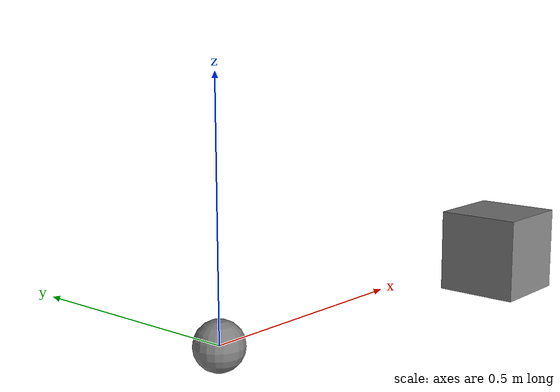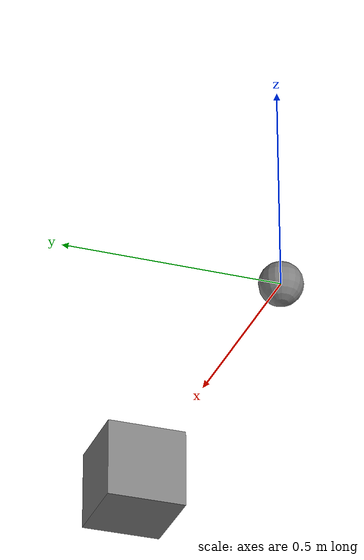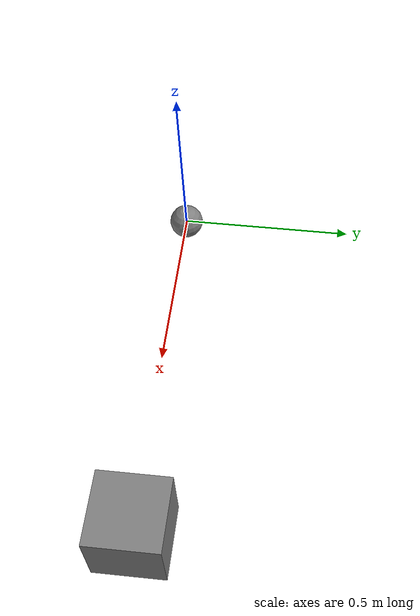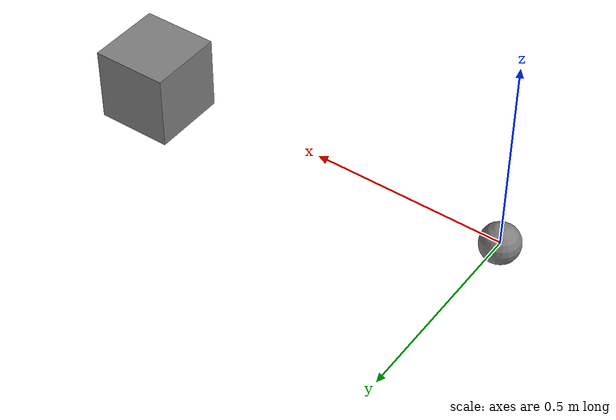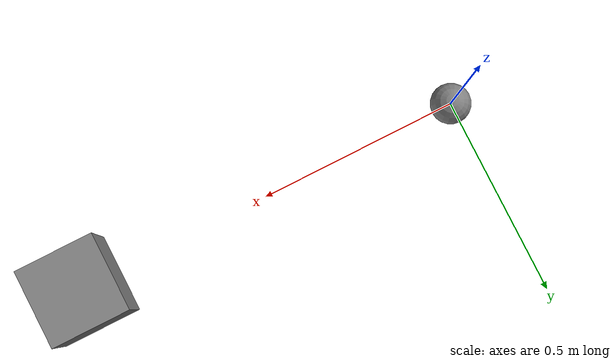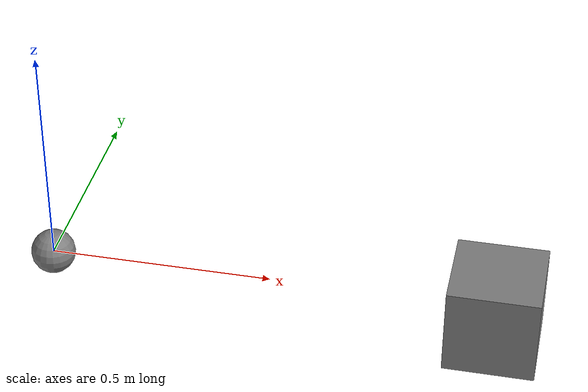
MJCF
<mujoco model="contact_filtering">
  <default>
    <default class="c">
      <geom contype="8" solref="0.005 0.5"/>
    </default>
  </default>

  <worldbody>
    <!-- b1: a fully-explicit geom (case 1) + a default-record geom (case 6). -->
    <body name="b1" pos="0 0 0">
      <inertial pos="0 0 0" mass="1.0" diaginertia="0.1 0.1 0.1"/>
      <!-- case 1: every C1b attr set explicitly; friction[0]=0.7, spin/roll dropped. -->
      <geom name="g_explicit" type="box" size="0.1 0.1 0.1"
            contype="2" conaffinity="4" condim="1" group="3" priority="5"
            solref="0.01 0.8" solimp="0.8 0.9 0.002 0.4 3"
            friction="0.7 0.1 0.01" margin="0.01" gap="0.005" solmix="0.5"/>
      <!-- case 6: no contact attrs -> all C1a record defaults. -->
      <geom name="g_default" type="sphere" size="0.05"/>
      <!-- case 2: contype=0 visual-only (h1 finger pattern). -->
      <geom name="g_visual" type="box" size="0.02 0.02 0.02"
            contype="0" conaffinity="0"/>
    </body>

    <body name="b2" pos="1 0 0">
      <inertial pos="0 0 0" mass="1.0" diaginertia="0.1 0.1 0.1"/>
      <!-- inherits contype=8 + solref from class "c"; condim NOT in class -> default 3. -->
      <geom name="g_class" class="c" type="box" size="0.1 0.1 0.1"/>
      <!-- in class "c" but sets its OWN contype -> own value (10) wins; solref still inherited. -->
      <geom name="g_class_override" class="c" type="box" size="0.1 0.1 0.1" contype="10"/>
    </body>
  </worldbody>

  <contact>
    <!-- case 4: body-pair exclusion. -->
    <exclude body1="b1" body2="b2"/>
    <!-- unresolved name -> skipped with a warning, no crash. -->
    <exclude body1="b1" body2="does_not_exist"/>
    <!-- case 5: explicit geom-pair override; friction[0]=0.5, condim=1. -->
    <pair geom1="g_explicit" geom2="g_default" friction="0.5" condim="1"/>
    <!-- unresolved geom -> skipped with a warning, no crash. -->
    <pair geom1="g_explicit" geom2="no_such_geom"/>
  </contact>
</mujoco>
